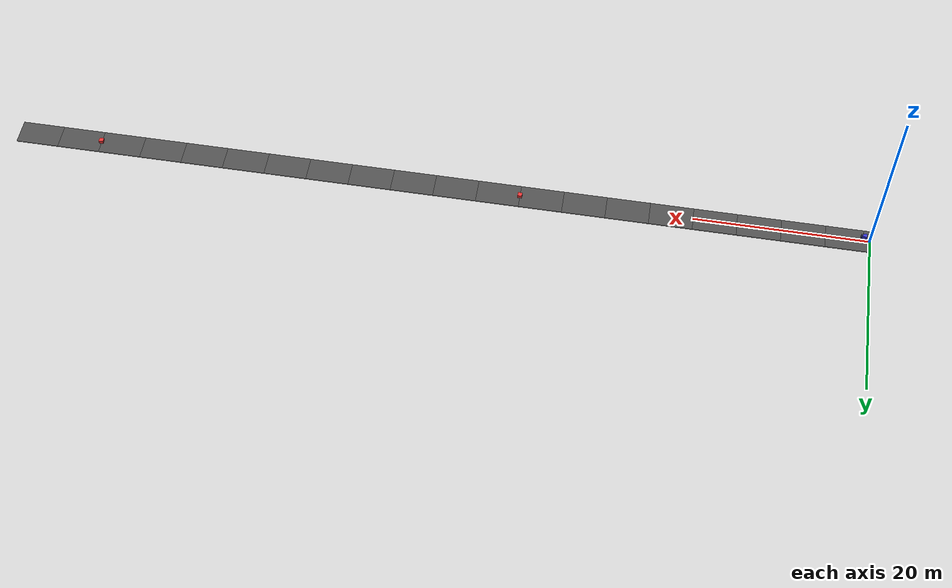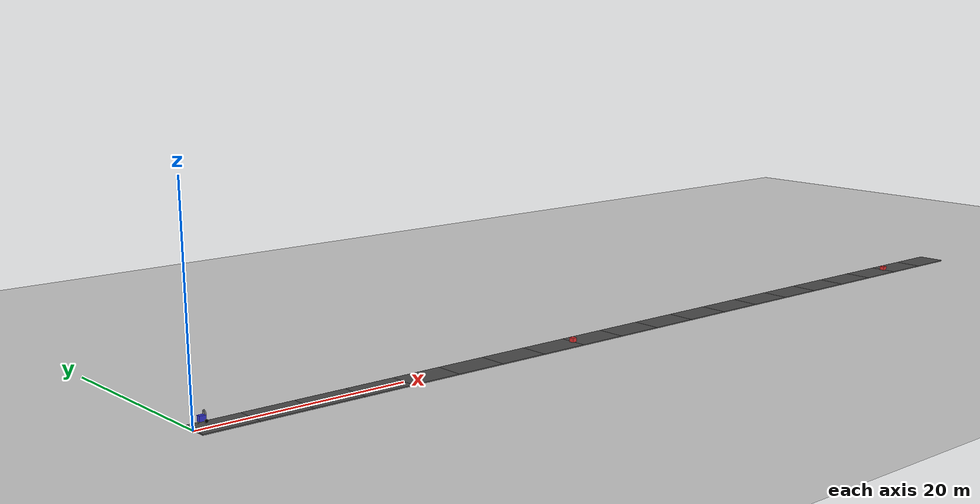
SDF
<?xml version="1.0" ?>
<sdf version="1.6">
  <world name="road_straight_moving_obstacle">
    <include>
      <uri>model://ground_plane</uri>
    </include>
    <include>
      <uri>model://sun</uri>
    </include>

    <!-- 直線 100m 幅 3m -->
    <include>
      <uri>model://road_straight_100m_w3</uri>
    </include>

    <!-- ロボット配置 -->
    <include>
      <uri>model://simple_robot</uri>
      <name>simple_robot</name>
      <pose>1 0 0.5 0 0 0</pose>
    </include>

    <!-- 直線路上の移動障害物 -->
    <include>
      <uri>model://moving_obstacle</uri>
      <name>moving_obstacle_front</name>
      <pose>40 0 0.25 0 0 3.14159</pose>
      <plugin name="moving_obstacle_front_plugin" filename="libmoving_obstacle_plugin.so">
        <robot_pose_topic>/amcl_pose</robot_pose_topic>
        <velocity>-0.4 0 0</velocity>
        <stop_distance>1.0</stop_distance>
        <start_distance>20.0</start_distance>
        <use_sim_time>true</use_sim_time>
      </plugin>
    </include>

    <include>
      <uri>model://moving_obstacle</uri>
      <name>moving_obstacle_back</name>
      <pose>90 0 0.25 0 0 3.14159</pose>
      <plugin name="moving_obstacle_back_plugin" filename="libmoving_obstacle_plugin.so">
        <robot_pose_topic>/amcl_pose</robot_pose_topic>
        <velocity>-1.0 0 0</velocity>
        <stop_distance>1.0</stop_distance>
        <start_distance>20.0</start_distance>
        <use_sim_time>true</use_sim_time>
      </plugin>
    </include>
  </world>
</sdf>

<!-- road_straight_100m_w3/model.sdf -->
<sdf version="1.6">
  <model name="road_straight_100m_w3">
    <static>true</static>

    <link name="panel_000">
      <pose>2.500 0.000 0.050 0 0 0.000000</pose>
      <collision name="panel_000_collision">
        <geometry>
          <box>
            <size>5.000 3.000 0.100</size>
          </box>
        </geometry>
        <surface>
          <friction>
            <ode>
              <mu>1.0</mu>
              <mu2>1.0</mu2>
            </ode>
          </friction>
        </surface>
      </collision>
      <visual name="panel_000_visual">
        <geometry>
          <box>
            <size>5.000 3.000 0.100</size>
          </box>
        </geometry>
        <material>
          <ambient>0.2 0.2 0.2 1</ambient>
          <diffuse>0.3 0.3 0.3 1</diffuse>
        </material>
      </visual>
    </link>

    <link name="panel_001">
      <pose>7.500 0.000 0.050 0 0 0.000000</pose>
      <collision name="panel_001_collision">
        <geometry>
          <box>
            <size>5.000 3.000 0.100</size>
          </box>
        </geometry>
        <surface>
          <friction>
            <ode>
              <mu>1.0</mu>
              <mu2>1.0</mu2>
            </ode>
          </friction>
        </surface>
      </collision>
      <visual name="panel_001_visual">
        <geometry>
          <box>
            <size>5.000 3.000 0.100</size>
          </box>
        </geometry>
        <material>
          <ambient>0.2 0.2 0.2 1</ambient>
          <diffuse>0.3 0.3 0.3 1</diffuse>
        </material>
      </visual>
    </link>

    <link name="panel_002">
      <pose>12.500 0.000 0.050 0 0 0.000000</pose>
      <collision name="panel_002_collision">
        <geometry>
          <box>
            <size>5.000 3.000 0.100</size>
          </box>
        </geometry>
        <surface>
          <friction>
            <ode>
              <mu>1.0</mu>
              <mu2>1.0</mu2>
            </ode>
          </friction>
        </surface>
      </collision>
      <visual name="panel_002_visual">
        <geometry>
          <box>
            <size>5.000 3.000 0.100</size>
          </box>
        </geometry>
        <material>
          <ambient>0.2 0.2 0.2 1</ambient>
          <diffuse>0.3 0.3 0.3 1</diffuse>
        </material>
      </visual>
    </link>

    <link name="panel_003">
      <pose>17.500 0.000 0.050 0 0 0.000000</pose>
      <collision name="panel_003_collision">
        <geometry>
          <box>
            <size>5.000 3.000 0.100</size>
          </box>
        </geometry>
        <surface>
          <friction>
            <ode>
              <mu>1.0</mu>
              <mu2>1.0</mu2>
            </ode>
          </friction>
        </surface>
      </collision>
      <visual name="panel_003_visual">
        <geometry>
          <box>
            <size>5.000 3.000 0.100</size>
          </box>
        </geometry>
        <material>
          <ambient>0.2 0.2 0.2 1</ambient>
          <diffuse>0.3 0.3 0.3 1</diffuse>
        </material>
      </visual>
    </link>

    <link name="panel_004">
      <pose>22.500 0.000 0.050 0 0 0.000000</pose>
      <collision name="panel_004_collision">
        <geometry>
          <box>
            <size>5.000 3.000 0.100</size>
          </box>
        </geometry>
        <surface>
          <friction>
            <ode>
              <mu>1.0</mu>
              <mu2>1.0</mu2>
            </ode>
          </friction>
        </surface>
      </collision>
      <visual name="panel_004_visual">
        <geometry>
          <box>
            <size>5.000 3.000 0.100</size>
          </box>
        </geometry>
        <material>
          <ambient>0.2 0.2 0.2 1</ambient>
          <diffuse>0.3 0.3 0.3 1</diffuse>
        </material>
      </visual>
    </link>

    <link name="panel_005">
      <pose>27.500 0.000 0.050 0 0 0.000000</pose>
      <collision name="panel_005_collision">
        <geometry>
          <box>
            <size>5.000 3.000 0.100</size>
          </box>
        </geometry>
        <surface>
          <friction>
            <ode>
              <mu>1.0</mu>
              <mu2>1.0</mu2>
            </ode>
          </friction>
        </surface>
      </collision>
      <visual name="panel_005_visual">
        <geometry>
          <box>
            <size>5.000 3.000 0.100</size>
          </box>
        </geometry>
        <material>
          <ambient>0.2 0.2 0.2 1</ambient>
          <diffuse>0.3 0.3 0.3 1</diffuse>
        </material>
      </visual>
    </link>

    <link name="panel_006">
      <pose>32.500 0.000 0.050 0 0 0.000000</pose>
      <collision name="panel_006_collision">
        <geometry>
          <box>
            <size>5.000 3.000 0.100</size>
          </box>
        </geometry>
        <surface>
          <friction>
            <ode>
              <mu>1.0</mu>
              <mu2>1.0</mu2>
            </ode>
          </friction>
        </surface>
      </collision>
      <visual name="panel_006_visual">
        <geometry>
          <box>
            <size>5.000 3.000 0.100</size>
          </box>
        </geometry>
        <material>
          <ambient>0.2 0.2 0.2 1</ambient>
          <diffuse>0.3 0.3 0.3 1</diffuse>
        </material>
      </visual>
    </link>

    <link name="panel_007">
      <pose>37.500 0.000 0.050 0 0 0.000000</pose>
      <collision name="panel_007_collision">
        <geometry>
          <box>
            <size>5.000 3.000 0.100</size>
          </box>
        </geometry>
        <surface>
          <friction>
            <ode>
              <mu>1.0</mu>
              <mu2>1.0</mu2>
            </ode>
          </friction>
        </surface>
      </collision>
      <visual name="panel_007_visual">
        <geometry>
          <box>
            <size>5.000 3.000 0.100</size>
          </box>
        </geometry>
        <material>
          <ambient>0.2 0.2 0.2 1</ambient>
          <diffuse>0.3 0.3 0.3 1</diffuse>
        </material>
      </visual>
    </link>

    <link name="panel_008">
      <pose>42.500 0.000 0.050 0 0 0.000000</pose>
      <collision name="panel_008_collision">
        <geometry>
          <box>
            <size>5.000 3.000 0.100</size>
          </box>
        </geometry>
        <surface>
          <friction>
            <ode>
              <mu>1.0</mu>
              <mu2>1.0</mu2>
            </ode>
          </friction>
        </surface>
      </collision>
      <visual name="panel_008_visual">
        <geometry>
          <box>
            <size>5.000 3.000 0.100</size>
          </box>
        </geometry>
        <material>
          <ambient>0.2 0.2 0.2 1</ambient>
          <diffuse>0.3 0.3 0.3 1</diffuse>
        </material>
      </visual>
    </link>

    <link name="panel_009">
      <pose>47.500 0.000 0.050 0 0 0.000000</pose>
      <collision name="panel_009_collision">
        <geometry>
          <box>
            <size>5.000 3.000 0.100</size>
          </box>
        </geometry>
        <surface>
          <friction>
            <ode>
              <mu>1.0</mu>
              <mu2>1.0</mu2>
            </ode>
          </friction>
        </surface>
      </collision>
      <visual name="panel_009_visual">
        <geometry>
          <box>
            <size>5.000 3.000 0.100</size>
          </box>
        </geometry>
        <material>
          <ambient>0.2 0.2 0.2 1</ambient>
          <diffuse>0.3 0.3 0.3 1</diffuse>
        </material>
      </visual>
    </link>

    <link name="panel_010">
      <pose>52.500 0.000 0.050 0 0 0.000000</pose>
      <collision name="panel_010_collision">
        <geometry>
          <box>
            <size>5.000 3.000 0.100</size>
          </box>
        </geometry>
        <surface>
          <friction>
            <ode>
              <mu>1.0</mu>
              <mu2>1.0</mu2>
            </ode>
          </friction>
        </surface>
      </collision>
      <visual name="panel_010_visual">
        <geometry>
          <box>
            <size>5.000 3.000 0.100</size>
          </box>
        </geometry>
        <material>
          <ambient>0.2 0.2 0.2 1</ambient>
          <diffuse>0.3 0.3 0.3 1</diffuse>
        </material>
      </visual>
    </link>

    <link name="panel_011">
      <pose>57.500 0.000 0.050 0 0 0.000000</pose>
      <collision name="panel_011_collision">
        <geometry>
          <box>
            <size>5.000 3.000 0.100</size>
          </box>
        </geometry>
        <surface>
          <friction>
            <ode>
              <mu>1.0</mu>
              <mu2>1.0</mu2>
            </ode>
          </friction>
        </surface>
      </collision>
      <visual name="panel_011_visual">
        <geometry>
          <box>
            <size>5.000 3.000 0.100</size>
          </box>
        </geometry>
        <material>
          <ambient>0.2 0.2 0.2 1</ambient>
          <diffuse>0.3 0.3 0.3 1</diffuse>
        </material>
      </visual>
    </link>

    <link name="panel_012">
      <pose>62.500 0.000 0.050 0 0 0.000000</pose>
      <collision name="panel_012_collision">
        <geometry>
          <box>
            <size>5.000 3.000 0.100</size>
          </box>
        </geometry>
        <surface>
          <friction>
            <ode>
              <mu>1.0</mu>
              <mu2>1.0</mu2>
            </ode>
          </friction>
        </surface>
      </collision>
      <visual name="panel_012_visual">
        <geometry>
          <box>
            <size>5.000 3.000 0.100</size>
          </box>
        </geometry>
        <material>
          <ambient>0.2 0.2 0.2 1</ambient>
          <diffuse>0.3 0.3 0.3 1</diffuse>
        </material>
      </visual>
    </link>

    <link name="panel_013">
      <pose>67.500 0.000 0.050 0 0 0.000000</pose>
      <collision name="panel_013_collision">
        <geometry>
          <box>
            <size>5.000 3.000 0.100</size>
          </box>
        </geometry>
        <surface>
          <friction>
            <ode>
              <mu>1.0</mu>
              <mu2>1.0</mu2>
            </ode>
          </friction>
        </surface>
      </collision>
      <visual name="panel_013_visual">
        <geometry>
          <box>
            <size>5.000 3.000 0.100</size>
          </box>
        </geometry>
        <material>
          <ambient>0.2 0.2 0.2 1</ambient>
          <diffuse>0.3 0.3 0.3 1</diffuse>
        </material>
      </visual>
    </link>

    <link name="panel_014">
      <pose>72.500 0.000 0.050 0 0 0.000000</pose>
      <collision name="panel_014_collision">
        <geometry>
          <box>
            <size>5.000 3.000 0.100</size>
          </box>
        </geometry>
        <surface>
          <friction>
            <ode>
              <mu>1.0</mu>
              <mu2>1.0</mu2>
            </ode>
          </friction>
        </surface>
      </collision>
      <visual name="panel_014_visual">
        <geometry>
          <box>
            <size>5.000 3.000 0.100</size>
          </box>
        </geometry>
        <material>
          <ambient>0.2 0.2 0.2 1</ambient>
          <diffuse>0.3 0.3 0.3 1</diffuse>
        </material>
      </visual>
    </link>

    <link name="panel_015">
      <pose>77.500 0.000 0.050 0 0 0.000000</pose>
      <collision name="panel_015_collision">
        <geometry>
          <box>
            <size>5.000 3.000 0.100</size>
          </box>
        </geometry>
        <surface>
          <friction>
            <ode>
              <mu>1.0</mu>
              <mu2>1.0</mu2>
            </ode>
          </friction>
        </surface>
      </collision>
      <visual name="panel_015_visual">
        <geometry>
          <box>
            <size>5.000 3.000 0.100</size>
          </box>
        </geometry>
        <material>
          <ambient>0.2 0.2 0.2 1</ambient>
          <diffuse>0.3 0.3 0.3 1</diffuse>
        </material>
      </visual>
    </link>

    <link name="panel_016">
      <pose>82.500 0.000 0.050 0 0 0.000000</pose>
      <collision name="panel_016_collision">
        <geometry>
          <box>
            <size>5.000 3.000 0.100</size>
          </box>
        </geometry>
        <surface>
          <friction>
            <ode>
              <mu>1.0</mu>
              <mu2>1.0</mu2>
            </ode>
          </friction>
        </surface>
      </collision>
      <visual name="panel_016_visual">
        <geometry>
          <box>
            <size>5.000 3.000 0.100</size>
          </box>
        </geometry>
        <material>
          <ambient>0.2 0.2 0.2 1</ambient>
          <diffuse>0.3 0.3 0.3 1</diffuse>
        </material>
      </visual>
    </link>

    <link name="panel_017">
      <pose>87.500 0.000 0.050 0 0 0.000000</pose>
      <collision name="panel_017_collision">
        <geometry>
          <box>
            <size>5.000 3.000 0.100</size>
          </box>
        </geometry>
        <surface>
          <friction>
            <ode>
              <mu>1.0</mu>
              <mu2>1.0</mu2>
            </ode>
          </friction>
        </surface>
      </collision>
      <visual name="panel_017_visual">
        <geometry>
          <box>
            <size>5.000 3.000 0.100</size>
          </box>
        </geometry>
        <material>
          <ambient>0.2 0.2 0.2 1</ambient>
          <diffuse>0.3 0.3 0.3 1</diffuse>
        </material>
      </visual>
    </link>

    <link name="panel_018">
      <pose>92.500 0.000 0.050 0 0 0.000000</pose>
      <collision name="panel_018_collision">
        <geometry>
          <box>
            <size>5.000 3.000 0.100</size>
          </box>
        </geometry>
        <surface>
          <friction>
            <ode>
              <mu>1.0</mu>
              <mu2>1.0</mu2>
            </ode>
          </friction>
        </surface>
      </collision>
      <visual name="panel_018_visual">
        <geometry>
          <box>
            <size>5.000 3.000 0.100</size>
          </box>
        </geometry>
        <material>
          <ambient>0.2 0.2 0.2 1</ambient>
          <diffuse>0.3 0.3 0.3 1</diffuse>
        </material>
      </visual>
    </link>

    <link name="panel_019">
      <pose>97.500 0.000 0.050 0 0 0.000000</pose>
      <collision name="panel_019_collision">
        <geometry>
          <box>
            <size>5.000 3.000 0.100</size>
          </box>
        </geometry>
        <surface>
          <friction>
            <ode>
              <mu>1.0</mu>
              <mu2>1.0</mu2>
            </ode>
          </friction>
        </surface>
      </collision>
      <visual name="panel_019_visual">
        <geometry>
          <box>
            <size>5.000 3.000 0.100</size>
          </box>
        </geometry>
        <material>
          <ambient>0.2 0.2 0.2 1</ambient>
          <diffuse>0.3 0.3 0.3 1</diffuse>
        </material>
      </visual>
    </link>

  </model>
</sdf>

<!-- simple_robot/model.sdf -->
<sdf version="1.6">
  <model name="icart_middle_robot">
    <static>false</static>
    <!-- モデル原点は world 原点に一致 -->
    <pose>0 0 0 0 0 0</pose>

    <!--                    Base Link                          -->
    <!-- base_link フレーム原点:
         - 左右駆動輪の車軸中心の中点
         - 高さ z = 0.15 (車輪半径)
    -->
    <link name="base_link">
      <pose>0 0 0.15 0 0 0</pose>

      <inertial>
        <!-- 車体の質量。柱やセンサより十分重い前提 -->
        <mass>50.0</mass>
        <!-- 車体全体の重心を x=-0.1 m 後方へオフセットして、
             前方に倒れにくくする -->
        <pose>-0.1 0 0 0 0 0</pose>
        <inertia>
          <ixx>5.0</ixx>
          <iyy>5.0</iyy>
          <izz>5.0</izz>
          <ixy>0</ixy>
          <ixz>0</ixz>
          <iyz>0</iyz>
        </inertia>
      </inertial>

      <collision name="collision">
        <pose>-0.25 0 0.25 0 0 0</pose>
        <geometry>
          <box>
            <size>0.6 0.4 0.5</size>
          </box>
        </geometry>
      </collision>

      <visual name="visual">
        <pose>-0.25 0 0.25 0 0 0</pose>
        <geometry>
          <box>
            <size>0.6 0.4 0.5</size>
          </box>
        </geometry>
        <material>
          <ambient>0.2 0.2 0.8 1</ambient>
          <diffuse>0.2 0.2 0.8 1</diffuse>
        </material>
      </visual>
    </link>

    <!--              UTM-30 Target Box (10cm)                 -->
    <!-- UTM-30LX 原点:
         - base_link 原点から前方 +0.075 m (x=0.075)
         - 地面から高さ 0.25 m
         → (x,y,z) = (0.075, 0, 0.25)
       立方体はこの点を中心に配置し、mid360 と同じ色にする。
    -->
    <link name="utm30_target_box">
      <pose>0.075 0 0.25 0 0 0</pose>
      <inertial>
        <mass>0.1</mass>
        <inertia>
          <ixx>1e-4</ixx>
          <iyy>1e-4</iyy>
          <izz>1e-4</izz>
        </inertia>
      </inertial>
      <visual name="visual">
        <geometry>
          <box><size>0.1 0.1 0.1</size></box>
        </geometry>
        <material>
          <!-- mid360 と同じグレー系 -->
          <ambient>0.5 0.5 0.5 1</ambient>
          <diffuse>0.5 0.5 0.5 1</diffuse>
        </material>
      </visual>
    </link>

    <joint name="utm30_target_joint" type="fixed">
      <parent>base_link</parent>
      <child>utm30_target_box</child>
    </joint>

    <!--                    Left Wheel                         -->
    <!-- Wheel 条件:
         - 半径: 0.15 m
         - 幅(length): 0.05 m
         - center (base_link 相対): x=0, y=+0.25, z=0.15
         - 色: 黒
    -->
    <link name="left_wheel_link">
      <pose>0 0.25 0.15 0 0 0</pose>

      <inertial>
        <mass>1.0</mass>
        <inertia>
          <ixx>0.01</ixx>
          <iyy>0.01</iyy>
          <izz>0.005</izz>
        </inertia>
      </inertial>

      <collision name="collision">
        <!-- Y 軸回転になるようロール 90deg -->
        <pose>0 0 0 1.5708 0 0</pose>
        <geometry>
          <cylinder>
            <radius>0.15</radius>
            <length>0.05</length>
          </cylinder>
        </geometry>
      </collision>

      <visual name="visual">
        <pose>0 0 0 1.5708 0 0</pose>
        <geometry>
          <cylinder>
            <radius>0.15</radius>
            <length>0.05</length>
          </cylinder>
        </geometry>
        <material>
          <ambient>0 0 0 1</ambient>
          <diffuse>0 0 0 1</diffuse>
        </material>
      </visual>
    </link>

    <joint name="left_wheel_joint" type="revolute">
      <parent>base_link</parent>
      <child>left_wheel_link</child>
      <pose>0 0 0 0 0 0</pose>
      <axis>
        <xyz>0 1 0</xyz>
        <limit>
          <lower>-1e16</lower>
          <upper>1e16</upper>
        </limit>
      </axis>
    </joint>

    <!--                    Right Wheel                        -->
    <!-- center (base_link 相対): x=0, y=-0.25, z=0.15 -->
    <link name="right_wheel_link">
      <pose>0 -0.25 0.15 0 0 0</pose>

      <inertial>
        <mass>1.0</mass>
        <inertia>
          <ixx>0.01</ixx>
          <iyy>0.01</iyy>
          <izz>0.005</izz>
        </inertia>
      </inertial>

      <collision name="collision">
        <pose>0 0 0 1.5708 0 0</pose>
        <geometry>
          <cylinder>
            <radius>0.15</radius>
            <length>0.05</length>
          </cylinder>
        </geometry>
      </collision>

      <visual name="visual">
        <pose>0 0 0 1.5708 0 0</pose>
        <geometry>
          <cylinder>
            <radius>0.15</radius>
            <length>0.05</length>
          </cylinder>
        </geometry>
        <material>
          <ambient>0 0 0 1</ambient>
          <diffuse>0 0 0 1</diffuse>
        </material>
      </visual>
    </link>

    <joint name="right_wheel_joint" type="revolute">
      <parent>base_link</parent>
      <child>right_wheel_link</child>
      <pose>0 0 0 0 0 0</pose>
      <axis>
        <xyz>0 1 0</xyz>
        <limit>
          <lower>-1e16</lower>
          <upper>1e16</upper>
        </limit>
      </axis>
    </joint>

    <!--                    Rear Caster                        -->
    <!-- キャスタの球の中心が、車体の後端 (x=-0.55) に来るように:
         - 車体後端: 車体中心 x=-0.25, サイズ 0.6 → 後端 = -0.25 - 0.3 = -0.55
         → center x = -0.55
    -->
    <link name="rear_caster_link">
      <!-- 半径 0.07 → 中心高さ 0.07 で地面 z=0 に接触 -->
      <pose>-0.55 0 0.07 0 0 0</pose>

      <inertial>
        <mass>5.0</mass>
        <inertia>
          <ixx>0.01</ixx>
          <iyy>0.01</iyy>
          <izz>0.01</izz>
        </inertia>
      </inertial>

      <collision name="collision">
        <geometry>
          <sphere>
            <radius>0.07</radius>
          </sphere>
        </geometry>
      </collision>

      <visual name="visual">
        <geometry>
          <sphere>
            <radius>0.07</radius>
          </sphere>
        </geometry>
        <material>
          <ambient>0 0 0 1</ambient>
          <diffuse>0 0 0 1</diffuse>
        </material>
      </visual>
    </link>

    <joint name="rear_caster_joint" type="ball">
      <parent>base_link</parent>
      <child>rear_caster_link</child>
      <pose>0 0 0 0 0 0</pose>
    </joint>

    <!--                        UTM-30LX                       -->
    <!-- UTM-30LX 本体。
         - XY中心: 駆動輪車軸中心から前方にシフト → (0.075, 0)
         - 高さ: z = 0.25
         - 視野: 約 270deg (±135deg)
         - range: 0.2 ～ 30 m
         - 出力: /scan (sensor_msgs/LaserScan)
    -->
    <link name="laser">
      <pose>0.075 0 0.25 0 0 0</pose>

      <inertial>
        <mass>2.0</mass>
        <inertia>
          <ixx>0.01</ixx>
          <iyy>0.01</iyy>
          <izz>0.01</izz>
        </inertia>
      </inertial>

      <sensor name="utm30" type="ray">
        <pose>0 0 0 0 0 0</pose>
        <update_rate>40</update_rate>

        <ray>
          <scan>
            <horizontal>
              <samples>1080</samples>
              <min_angle>-2.35619</min_angle>
              <max_angle>2.35619</max_angle>
            </horizontal>
          </scan>
          <range>
            <min>0.2</min>
            <max>30</max>
          </range>
        </ray>

        <plugin name="utm30_plugin" filename="libgazebo_ros_ray_sensor.so">
          <ros>
            <remapping>~/out:=/scan</remapping>
          </ros>
          <output_type>sensor_msgs/LaserScan</output_type>
        </plugin>
      </sensor>
    </link>

    <joint name="utm30_joint" type="fixed">
      <parent>base_link</parent>
      <child>laser</child>
    </joint>

    <!--                    Mid360 支柱                       -->
    <link name="pillar_left">
      <pose>0 0.15 0.8025 0 0 0</pose>
      <inertial>
        <mass>1.0</mass>
        <inertia>
          <ixx>0.005</ixx>
          <iyy>0.005</iyy>
          <izz>0.005</izz>
        </inertia>
      </inertial>
      <visual name="visual">
        <geometry>
          <box><size>0.1 0.1 0.305</size></box>
        </geometry>
      </visual>
    </link>

    <joint name="pillar_left_joint" type="fixed">
      <parent>base_link</parent>
      <child>pillar_left</child>
    </joint>

    <link name="pillar_right">
      <pose>0 -0.15 0.8025 0 0 0</pose>
      <inertial>
        <mass>1.0</mass>
        <inertia>
          <ixx>0.005</ixx>
          <iyy>0.005</iyy>
          <izz>0.005</izz>
        </inertia>
      </inertial>
      <visual name="visual">
        <geometry>
          <box><size>0.1 0.1 0.305</size></box>
        </geometry>
      </visual>
    </link>

    <joint name="pillar_right_joint" type="fixed">
      <parent>base_link</parent>
      <child>pillar_right</child>
    </joint>

    <!--                    Mid360 横梁                       -->
    <link name="pillar_beam">
      <pose>0 0 0.905 0 0 0</pose>
      <inertial>
        <mass>1.0</mass>
        <inertia>
          <ixx>0.005</ixx>
          <iyy>0.005</iyy>
          <izz>0.005</izz>
        </inertia>
      </inertial>
      <visual name="visual">
        <geometry>
          <box><size>0.1 0.4 0.1</size></box>
        </geometry>
      </visual>
    </link>

    <joint name="pillar_beam_joint" type="fixed">
      <parent>pillar_left</parent>
      <child>pillar_beam</child>
    </joint>

    <!--                    Mid360 ダミー                      -->
    <!-- Mid360 円柱条件:
         - XY中心: 駆動輪車軸中心の真上 → (0, 0)
         - 高さ: z = 1.005
    -->
    <link name="mid360_dummy">
      <pose>0 0 1.005 0 0 0</pose>
      <inertial>
        <mass>2.0</mass>
        <inertia>
          <ixx>0.01</ixx>
          <iyy>0.01</iyy>
          <izz>0.01</izz>
        </inertia>
      </inertial>
      <visual name="visual">
        <geometry>
          <cylinder>
            <radius>0.05</radius>
            <length>0.1</length>
          </cylinder>
        </geometry>
        <material>
          <!-- UTM立方体と同じグレー系 -->
          <ambient>0.5 0.5 0.5 1</ambient>
          <diffuse>0.5 0.5 0.5 1</diffuse>
        </material>
      </visual>
    </link>

    <joint name="mid360_dummy_joint" type="fixed">
      <parent>base_link</parent>
      <child>mid360_dummy</child>
    </joint>

    <!--                    Mid360 センサ                      -->
    <link name="mid360_frame">
      <pose>0 0 1.005 0 0 0</pose>
      <inertial>
        <mass>2.0</mass>
        <inertia>
          <ixx>0.01</ixx>
          <iyy>0.01</iyy>
          <izz>0.01</izz>
        </inertia>
      </inertial>

      <sensor name="mid360" type="ray">
        <update_rate>10</update_rate>
        <ray>
          <scan>
            <horizontal>
              <samples>900</samples>
              <min_angle>-3.14159</min_angle>
              <max_angle>3.14159</max_angle>
            </horizontal>
            <vertical>
              <samples>24</samples>
              <min_angle>-0.122</min_angle>
              <max_angle>0.907</max_angle>
            </vertical>
          </scan>
          <range>
            <min>0.2</min>
            <max>40</max>
          </range>
        </ray>

        <plugin name="mid360_plugin" filename="libgazebo_ros_ray_sensor.so">
          <ros>
            <remapping>~/out:=/mid360/livox/lidar</remapping>
          </ros>
          <output_type>sensor_msgs/PointCloud2</output_type>
        </plugin>
      </sensor>
    </link>

    <joint name="mid360_joint" type="fixed">
      <parent>base_link</parent>
      <child>mid360_frame</child>
    </joint>

    <!--                Diff Drive Plugin (ROS2)               -->
    <!-- 差動二輪の条件:
         - wheel_separation: 0.5 m (y=±0.25)
         - wheel_diameter: 0.3 m
         - cmd_vel: /cmd_vel
         - odom: /ypspur_ros/odom
         - TF と odom を publish
    -->
    <plugin name="diff_drive" filename="libgazebo_ros_diff_drive.so">
      <ros>
        <remapping>cmd_vel:=/cmd_vel</remapping>
        <remapping>odom:=/ypspur_ros/odom</remapping>
      </ros>

      <left_joint>left_wheel_joint</left_joint>
      <right_joint>right_wheel_joint</right_joint>

      <wheel_separation>0.5</wheel_separation>
      <wheel_diameter>0.3</wheel_diameter>

      <publish_odom>true</publish_odom>
      <publish_tf>true</publish_tf>
    </plugin>

  </model>
</sdf>

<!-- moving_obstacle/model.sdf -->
<sdf version="1.6">
  <model name="moving_obstacle">
    <static>false</static>
    <pose>0 0 0.25 0 0 0</pose>
    <link name="body">
      <inertial>
        <mass>5.0</mass>
      </inertial>
      <collision name="collision">
        <geometry>
          <box>
            <size>0.5 0.5 0.5</size>
          </box>
        </geometry>
      </collision>
      <visual name="visual">
        <geometry>
          <box>
            <size>0.5 0.5 0.5</size>
          </box>
        </geometry>
        <material>
          <ambient>0.9 0.2 0.2 1</ambient>
          <diffuse>0.9 0.2 0.2 1</diffuse>
        </material>
      </visual>
    </link>

  </model>
</sdf>
